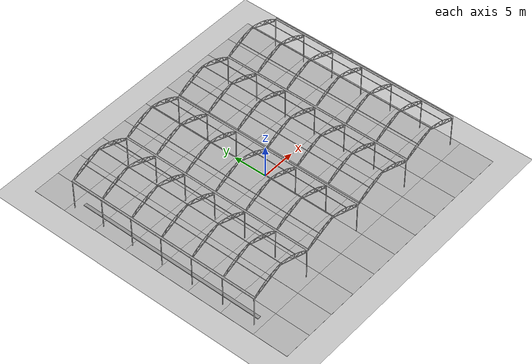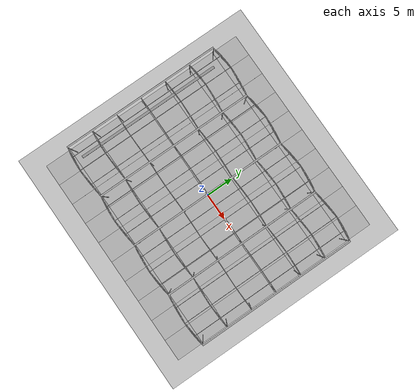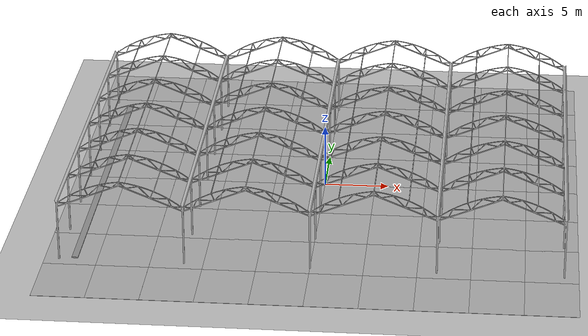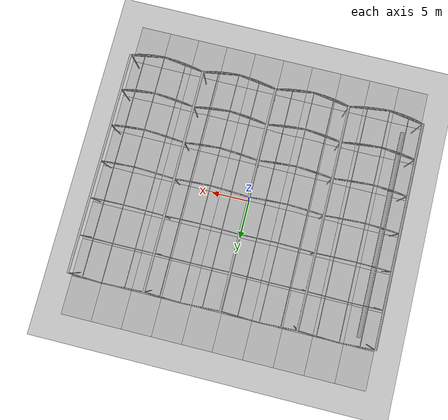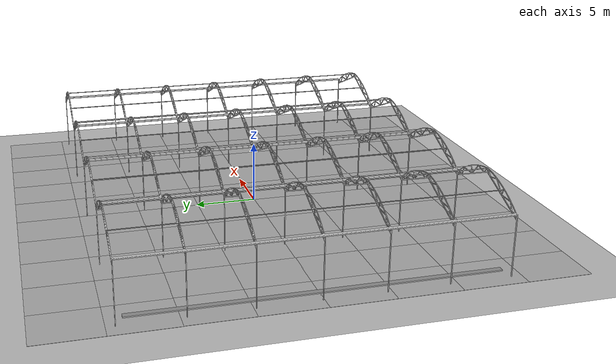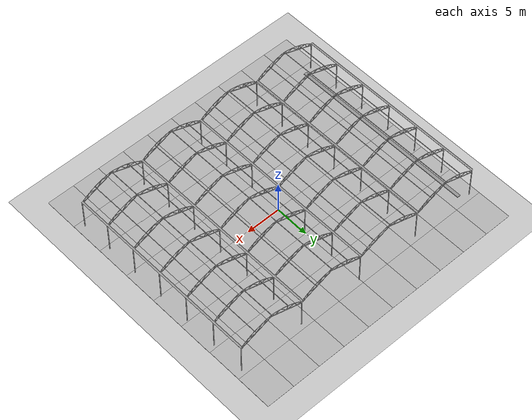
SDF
<sdf version="1.6">
 <world name="default">
  <light name="sun" type="directional">
   <pose>0 0 10 0 -0 0</pose>
   <diffuse>0.8 0.8 0.8 1</diffuse>
   <specular>0.2 0.2 0.2 1</specular>
   <attenuation>
    <range>1000</range>
    <constant>0.9</constant>
    <linear>0.01</linear>
    <quadratic>0.001</quadratic>
   </attenuation>
   <direction>-0.5 0.1 -0.9</direction>
  </light>
  <model name="ground_plane">
   <static>1</static>
   <link name="link">
    <collision name="collision">
     <geometry><plane><normal>0 0 1</normal><size>100 100</size></plane></geometry>
     <surface>
      <contact><collide_bitmask>65535</collide_bitmask></contact>
      <friction><ode><mu>100</mu><mu2>50</mu2></ode></friction>
     </surface>
    </collision>
    <visual name="visual">
     <cast_shadows>0</cast_shadows>
     <geometry><plane><normal>0 0 1</normal><size>100 100</size></plane></geometry>
     <material>
      <script><uri>file://media/materials/scripts/gazebo.material</uri><name>Gazebo/Grey</name></script>
     </material>
    </visual>
   </link>
  </model>
  <gravity>0 0 -9.8</gravity>
  <magnetic_field>6e-06 2.3e-05 -4.2e-05</magnetic_field>
  <atmosphere type="adiabatic"/>
  <physics name="default_physics" default="0" type="ode">
   <max_step_size>0.001</max_step_size>
   <real_time_factor>1</real_time_factor>
   <real_time_update_rate>1000</real_time_update_rate>
  </physics>
  <scene><ambient>0.4 0.4 0.4 1</ambient><background>0.7 0.7 0.7 1</background><shadows>1</shadows></scene>
  <audio><device>default</device></audio>
  <spherical_coordinates>
   <surface_model>EARTH_WGS84</surface_model>
   <latitude_deg>0</latitude_deg>
   <longitude_deg>0</longitude_deg>
   <elevation>0</elevation>
   <heading_deg>0</heading_deg>
  </spherical_coordinates>
  <model name="greenhouse">
   <static>1</static>
   <link name="link">
    <collision name="collision">
     <geometry>
      <mesh><scale>0.05 0.05 0.05</scale><uri>model://greenhouse/meshes/greenhouse.dae</uri></mesh>
     </geometry>
    </collision>
    <visual name="visual">
     <geometry>
      <mesh><scale>0.03 0.03 0.03</scale><uri>model://greenhouse/meshes/greenhouse.dae</uri></mesh>
     </geometry>
    </visual>
   </link>
   <pose>-24.6631 -23.579 0 0 -0 0</pose>
  </model>
  <model name="Plant_Base">
   <link name="link_0">
    <inertial>
     <mass>1.1839</mass>
     <inertia>
      <ixx>75.2086</ixx>
      <ixy>0</ixy>
      <ixz>0</ixz>
      <iyy>0.0226752</iyy>
      <iyz>0</iyz>
      <izz>75.2297</izz>
     </inertia>
    </inertial>
    <pose>1.3e-05 0 0 0 -0.006723 0</pose>
    <visual name="visual">
     <geometry><box><size>0.470639 27.6098 0.091294</size></box></geometry>
     <material>
      <lighting>1</lighting>
      <script><uri>file://media/materials/scripts/gazebo.material</uri><name>Gazebo/Grey</name></script>
     </material>
    </visual>
    <collision name="collision">
     <geometry><box><size>0.470639 27.6098 0.091294</size></box></geometry>
     <surface>
      <friction>
       <ode><mu>1</mu><mu2>1</mu2><fdir1>0 0 0</fdir1><slip1>0</slip1><slip2>0</slip2></ode>
       <torsional>
        <coefficient>1</coefficient>
        <patch_radius>0</patch_radius>
        <surface_radius>0</surface_radius>
        <use_patch_radius>1</use_patch_radius>
        <ode><slip>0</slip></ode>
       </torsional>
      </friction>
      <bounce><restitution_coefficient>0</restitution_coefficient><threshold>1e+06</threshold></bounce>
      <contact>
       <collide_without_contact>0</collide_without_contact>
       <collide_without_contact_bitmask>1</collide_without_contact_bitmask>
       <collide_bitmask>1</collide_bitmask>
       <ode>
        <soft_cfm>0</soft_cfm>
        <soft_erp>0.2</soft_erp>
        <kp>1e+13</kp>
        <kd>1</kd>
        <max_vel>0.01</max_vel>
        <min_depth>0</min_depth>
       </ode>
       <bullet>
        <split_impulse>1</split_impulse>
        <split_impulse_penetration_threshold>-0.01</split_impulse_penetration_threshold>
        <soft_cfm>0</soft_cfm>
        <soft_erp>0.2</soft_erp>
        <kp>1e+13</kp>
        <kd>1</kd>
       </bullet>
      </contact>
     </surface>
    </collision>
   </link>
   <static>0</static>
   <pose>-17.7368 -0.178911 0.055637 0 0.006766 0</pose>
  </model>
  <model name="Ground_Soil">
   <model name="mud_box">
    <static>1</static>
    <link name="link">
     <collision name="collision"><geometry><box><size>8 10 0.02</size></box></geometry></collision>
     <visual name="visual_1">
      <pose>-2 2.5 0 0 -0 0</pose>
      <cast_shadows>0</cast_shadows>
      <geometry><box><size>4 5 0.02</size></box></geometry>
      <material>
       <script>
        <uri>model://mud_box/materials/scripts</uri>
        <uri>model://mud_box/materials/textures</uri>
        <name>vrc/mud</name>
       </script>
      </material>
     </visual>
     <visual name="visual_2">
      <pose>2 2.5 0 0 -0 0</pose>
      <cast_shadows>0</cast_shadows>
      <geometry><box><size>4 5 0.02</size></box></geometry>
      <material>
       <script>
        <uri>model://mud_box/materials/scripts</uri>
        <uri>model://mud_box/materials/textures</uri>
        <name>vrc/mud</name>
       </script>
      </material>
     </visual>
     <visual name="visual_3">
      <pose>2 -2.5 0 0 -0 0</pose>
      <cast_shadows>0</cast_shadows>
      <geometry><box><size>4 5 0.02</size></box></geometry>
      <material>
       <script>
        <uri>model://mud_box/materials/scripts</uri>
        <uri>model://mud_box/materials/textures</uri>
        <name>vrc/mud</name>
       </script>
      </material>
     </visual>
     <visual name="visual_4">
      <pose>-2 -2.5 0 0 -0 0</pose>
      <cast_shadows>0</cast_shadows>
      <geometry><box><size>4 5 0.02</size></box></geometry>
      <material>
       <script>
        <uri>model://mud_box/materials/scripts</uri>
        <uri>model://mud_box/materials/textures</uri>
        <name>vrc/mud</name>
       </script>
      </material>
     </visual>
    </link>
    <pose>-16.0013 0.000118 0 0 -0 0</pose>
   </model>
   <model name="mud_box_0">
    <static>1</static>
    <link name="link">
     <collision name="collision"><geometry><box><size>8 10 0.02</size></box></geometry></collision>
     <visual name="visual_1">
      <pose>-2 2.5 0 0 -0 0</pose>
      <cast_shadows>0</cast_shadows>
      <geometry><box><size>4 5 0.02</size></box></geometry>
      <material>
       <script>
        <uri>model://mud_box/materials/scripts</uri>
        <uri>model://mud_box/materials/textures</uri>
        <name>vrc/mud</name>
       </script>
      </material>
     </visual>
     <visual name="visual_2">
      <pose>2 2.5 0 0 -0 0</pose>
      <cast_shadows>0</cast_shadows>
      <geometry><box><size>4 5 0.02</size></box></geometry>
      <material>
       <script>
        <uri>model://mud_box/materials/scripts</uri>
        <uri>model://mud_box/materials/textures</uri>
        <name>vrc/mud</name>
       </script>
      </material>
     </visual>
     <visual name="visual_3">
      <pose>2 -2.5 0 0 -0 0</pose>
      <cast_shadows>0</cast_shadows>
      <geometry><box><size>4 5 0.02</size></box></geometry>
      <material>
       <script>
        <uri>model://mud_box/materials/scripts</uri>
        <uri>model://mud_box/materials/textures</uri>
        <name>vrc/mud</name>
       </script>
      </material>
     </visual>
     <visual name="visual_4">
      <pose>-2 -2.5 0 0 -0 0</pose>
      <cast_shadows>0</cast_shadows>
      <geometry><box><size>4 5 0.02</size></box></geometry>
      <material>
       <script>
        <uri>model://mud_box/materials/scripts</uri>
        <uri>model://mud_box/materials/textures</uri>
        <name>vrc/mud</name>
       </script>
      </material>
     </visual>
    </link>
    <pose>-7.99939 9.1e-05 0 0 -0 0</pose>
   </model>
   <model name="mud_box_1">
    <static>1</static>
    <link name="link">
     <collision name="collision"><geometry><box><size>8 10 0.02</size></box></geometry></collision>
     <visual name="visual_1">
      <pose>-2 2.5 0 0 -0 0</pose>
      <cast_shadows>0</cast_shadows>
      <geometry><box><size>4 5 0.02</size></box></geometry>
      <material>
       <script>
        <uri>model://mud_box/materials/scripts</uri>
        <uri>model://mud_box/materials/textures</uri>
        <name>vrc/mud</name>
       </script>
      </material>
     </visual>
     <visual name="visual_2">
      <pose>2 2.5 0 0 -0 0</pose>
      <cast_shadows>0</cast_shadows>
      <geometry><box><size>4 5 0.02</size></box></geometry>
      <material>
       <script>
        <uri>model://mud_box/materials/scripts</uri>
        <uri>model://mud_box/materials/textures</uri>
        <name>vrc/mud</name>
       </script>
      </material>
     </visual>
     <visual name="visual_3">
      <pose>2 -2.5 0 0 -0 0</pose>
      <cast_shadows>0</cast_shadows>
      <geometry><box><size>4 5 0.02</size></box></geometry>
      <material>
       <script>
        <uri>model://mud_box/materials/scripts</uri>
        <uri>model://mud_box/materials/textures</uri>
        <name>vrc/mud</name>
       </script>
      </material>
     </visual>
     <visual name="visual_4">
      <pose>-2 -2.5 0 0 -0 0</pose>
      <cast_shadows>0</cast_shadows>
      <geometry><box><size>4 5 0.02</size></box></geometry>
      <material>
       <script>
        <uri>model://mud_box/materials/scripts</uri>
        <uri>model://mud_box/materials/textures</uri>
        <name>vrc/mud</name>
       </script>
      </material>
     </visual>
    </link>
    <pose>0.000809 -0.000342 0 0 -0 0</pose>
   </model>
   <model name="mud_box_2">
    <static>1</static>
    <link name="link">
     <collision name="collision"><geometry><box><size>8 10 0.02</size></box></geometry></collision>
     <visual name="visual_1">
      <pose>-2 2.5 0 0 -0 0</pose>
      <cast_shadows>0</cast_shadows>
      <geometry><box><size>4 5 0.02</size></box></geometry>
      <material>
       <script>
        <uri>model://mud_box/materials/scripts</uri>
        <uri>model://mud_box/materials/textures</uri>
        <name>vrc/mud</name>
       </script>
      </material>
     </visual>
     <visual name="visual_2">
      <pose>2 2.5 0 0 -0 0</pose>
      <cast_shadows>0</cast_shadows>
      <geometry><box><size>4 5 0.02</size></box></geometry>
      <material>
       <script>
        <uri>model://mud_box/materials/scripts</uri>
        <uri>model://mud_box/materials/textures</uri>
        <name>vrc/mud</name>
       </script>
      </material>
     </visual>
     <visual name="visual_3">
      <pose>2 -2.5 0 0 -0 0</pose>
      <cast_shadows>0</cast_shadows>
      <geometry><box><size>4 5 0.02</size></box></geometry>
      <material>
       <script>
        <uri>model://mud_box/materials/scripts</uri>
        <uri>model://mud_box/materials/textures</uri>
        <name>vrc/mud</name>
       </script>
      </material>
     </visual>
     <visual name="visual_4">
      <pose>-2 -2.5 0 0 -0 0</pose>
      <cast_shadows>0</cast_shadows>
      <geometry><box><size>4 5 0.02</size></box></geometry>
      <material>
       <script>
        <uri>model://mud_box/materials/scripts</uri>
        <uri>model://mud_box/materials/textures</uri>
        <name>vrc/mud</name>
       </script>
      </material>
     </visual>
    </link>
    <pose>8.00089 -0.000148 0 0 -0 0</pose>
   </model>
   <model name="mud_box_3">
    <static>1</static>
    <link name="link">
     <collision name="collision"><geometry><box><size>8 10 0.02</size></box></geometry></collision>
     <visual name="visual_1">
      <pose>-2 2.5 0 0 -0 0</pose>
      <cast_shadows>0</cast_shadows>
      <geometry><box><size>4 5 0.02</size></box></geometry>
      <material>
       <script>
        <uri>model://mud_box/materials/scripts</uri>
        <uri>model://mud_box/materials/textures</uri>
        <name>vrc/mud</name>
       </script>
      </material>
     </visual>
     <visual name="visual_2">
      <pose>2 2.5 0 0 -0 0</pose>
      <cast_shadows>0</cast_shadows>
      <geometry><box><size>4 5 0.02</size></box></geometry>
      <material>
       <script>
        <uri>model://mud_box/materials/scripts</uri>
        <uri>model://mud_box/materials/textures</uri>
        <name>vrc/mud</name>
       </script>
      </material>
     </visual>
     <visual name="visual_3">
      <pose>2 -2.5 0 0 -0 0</pose>
      <cast_shadows>0</cast_shadows>
      <geometry><box><size>4 5 0.02</size></box></geometry>
      <material>
       <script>
        <uri>model://mud_box/materials/scripts</uri>
        <uri>model://mud_box/materials/textures</uri>
        <name>vrc/mud</name>
       </script>
      </material>
     </visual>
     <visual name="visual_4">
      <pose>-2 -2.5 0 0 -0 0</pose>
      <cast_shadows>0</cast_shadows>
      <geometry><box><size>4 5 0.02</size></box></geometry>
      <material>
       <script>
        <uri>model://mud_box/materials/scripts</uri>
        <uri>model://mud_box/materials/textures</uri>
        <name>vrc/mud</name>
       </script>
      </material>
     </visual>
    </link>
    <pose>15.9991 0.000313 0 0 -0 0</pose>
   </model>
   <static>0</static>
   <pose>-0.005885 -14.9895 0 0 -0 0</pose>
  </model>
  <model name="Ground_Soil_0">
   <model name="mud_box">
    <static>1</static>
    <link name="link">
     <collision name="collision"><geometry><box><size>8 10 0.02</size></box></geometry></collision>
     <visual name="visual_1">
      <pose>-2 2.5 0 0 -0 0</pose>
      <cast_shadows>0</cast_shadows>
      <geometry><box><size>4 5 0.02</size></box></geometry>
      <material>
       <script>
        <uri>model://mud_box/materials/scripts</uri>
        <uri>model://mud_box/materials/textures</uri>
        <name>vrc/mud</name>
       </script>
      </material>
     </visual>
     <visual name="visual_2">
      <pose>2 2.5 0 0 -0 0</pose>
      <cast_shadows>0</cast_shadows>
      <geometry><box><size>4 5 0.02</size></box></geometry>
      <material>
       <script>
        <uri>model://mud_box/materials/scripts</uri>
        <uri>model://mud_box/materials/textures</uri>
        <name>vrc/mud</name>
       </script>
      </material>
     </visual>
     <visual name="visual_3">
      <pose>2 -2.5 0 0 -0 0</pose>
      <cast_shadows>0</cast_shadows>
      <geometry><box><size>4 5 0.02</size></box></geometry>
      <material>
       <script>
        <uri>model://mud_box/materials/scripts</uri>
        <uri>model://mud_box/materials/textures</uri>
        <name>vrc/mud</name>
       </script>
      </material>
     </visual>
     <visual name="visual_4">
      <pose>-2 -2.5 0 0 -0 0</pose>
      <cast_shadows>0</cast_shadows>
      <geometry><box><size>4 5 0.02</size></box></geometry>
      <material>
       <script>
        <uri>model://mud_box/materials/scripts</uri>
        <uri>model://mud_box/materials/textures</uri>
        <name>vrc/mud</name>
       </script>
      </material>
     </visual>
    </link>
    <pose>-16.0013 0.000118 0 0 -0 0</pose>
   </model>
   <model name="mud_box_0">
    <static>1</static>
    <link name="link">
     <collision name="collision"><geometry><box><size>8 10 0.02</size></box></geometry></collision>
     <visual name="visual_1">
      <pose>-2 2.5 0 0 -0 0</pose>
      <cast_shadows>0</cast_shadows>
      <geometry><box><size>4 5 0.02</size></box></geometry>
      <material>
       <script>
        <uri>model://mud_box/materials/scripts</uri>
        <uri>model://mud_box/materials/textures</uri>
        <name>vrc/mud</name>
       </script>
      </material>
     </visual>
     <visual name="visual_2">
      <pose>2 2.5 0 0 -0 0</pose>
      <cast_shadows>0</cast_shadows>
      <geometry><box><size>4 5 0.02</size></box></geometry>
      <material>
       <script>
        <uri>model://mud_box/materials/scripts</uri>
        <uri>model://mud_box/materials/textures</uri>
        <name>vrc/mud</name>
       </script>
      </material>
     </visual>
     <visual name="visual_3">
      <pose>2 -2.5 0 0 -0 0</pose>
      <cast_shadows>0</cast_shadows>
      <geometry><box><size>4 5 0.02</size></box></geometry>
      <material>
       <script>
        <uri>model://mud_box/materials/scripts</uri>
        <uri>model://mud_box/materials/textures</uri>
        <name>vrc/mud</name>
       </script>
      </material>
     </visual>
     <visual name="visual_4">
      <pose>-2 -2.5 0 0 -0 0</pose>
      <cast_shadows>0</cast_shadows>
      <geometry><box><size>4 5 0.02</size></box></geometry>
      <material>
       <script>
        <uri>model://mud_box/materials/scripts</uri>
        <uri>model://mud_box/materials/textures</uri>
        <name>vrc/mud</name>
       </script>
      </material>
     </visual>
    </link>
    <pose>-7.99939 9.1e-05 0 0 -0 0</pose>
   </model>
   <model name="mud_box_1">
    <static>1</static>
    <link name="link">
     <collision name="collision"><geometry><box><size>8 10 0.02</size></box></geometry></collision>
     <visual name="visual_1">
      <pose>-2 2.5 0 0 -0 0</pose>
      <cast_shadows>0</cast_shadows>
      <geometry><box><size>4 5 0.02</size></box></geometry>
      <material>
       <script>
        <uri>model://mud_box/materials/scripts</uri>
        <uri>model://mud_box/materials/textures</uri>
        <name>vrc/mud</name>
       </script>
      </material>
     </visual>
     <visual name="visual_2">
      <pose>2 2.5 0 0 -0 0</pose>
      <cast_shadows>0</cast_shadows>
      <geometry><box><size>4 5 0.02</size></box></geometry>
      <material>
       <script>
        <uri>model://mud_box/materials/scripts</uri>
        <uri>model://mud_box/materials/textures</uri>
        <name>vrc/mud</name>
       </script>
      </material>
     </visual>
     <visual name="visual_3">
      <pose>2 -2.5 0 0 -0 0</pose>
      <cast_shadows>0</cast_shadows>
      <geometry><box><size>4 5 0.02</size></box></geometry>
      <material>
       <script>
        <uri>model://mud_box/materials/scripts</uri>
        <uri>model://mud_box/materials/textures</uri>
        <name>vrc/mud</name>
       </script>
      </material>
     </visual>
     <visual name="visual_4">
      <pose>-2 -2.5 0 0 -0 0</pose>
      <cast_shadows>0</cast_shadows>
      <geometry><box><size>4 5 0.02</size></box></geometry>
      <material>
       <script>
        <uri>model://mud_box/materials/scripts</uri>
        <uri>model://mud_box/materials/textures</uri>
        <name>vrc/mud</name>
       </script>
      </material>
     </visual>
    </link>
    <pose>0.000809 -0.000342 0 0 -0 0</pose>
   </model>
   <model name="mud_box_2">
    <static>1</static>
    <link name="link">
     <collision name="collision"><geometry><box><size>8 10 0.02</size></box></geometry></collision>
     <visual name="visual_1">
      <pose>-2 2.5 0 0 -0 0</pose>
      <cast_shadows>0</cast_shadows>
      <geometry><box><size>4 5 0.02</size></box></geometry>
      <material>
       <script>
        <uri>model://mud_box/materials/scripts</uri>
        <uri>model://mud_box/materials/textures</uri>
        <name>vrc/mud</name>
       </script>
      </material>
     </visual>
     <visual name="visual_2">
      <pose>2 2.5 0 0 -0 0</pose>
      <cast_shadows>0</cast_shadows>
      <geometry><box><size>4 5 0.02</size></box></geometry>
      <material>
       <script>
        <uri>model://mud_box/materials/scripts</uri>
        <uri>model://mud_box/materials/textures</uri>
        <name>vrc/mud</name>
       </script>
      </material>
     </visual>
     <visual name="visual_3">
      <pose>2 -2.5 0 0 -0 0</pose>
      <cast_shadows>0</cast_shadows>
      <geometry><box><size>4 5 0.02</size></box></geometry>
      <material>
       <script>
        <uri>model://mud_box/materials/scripts</uri>
        <uri>model://mud_box/materials/textures</uri>
        <name>vrc/mud</name>
       </script>
      </material>
     </visual>
     <visual name="visual_4">
      <pose>-2 -2.5 0 0 -0 0</pose>
      <cast_shadows>0</cast_shadows>
      <geometry><box><size>4 5 0.02</size></box></geometry>
      <material>
       <script>
        <uri>model://mud_box/materials/scripts</uri>
        <uri>model://mud_box/materials/textures</uri>
        <name>vrc/mud</name>
       </script>
      </material>
     </visual>
    </link>
    <pose>8.00089 -0.000148 0 0 -0 0</pose>
   </model>
   <model name="mud_box_3">
    <static>1</static>
    <link name="link">
     <collision name="collision"><geometry><box><size>8 10 0.02</size></box></geometry></collision>
     <visual name="visual_1">
      <pose>-2 2.5 0 0 -0 0</pose>
      <cast_shadows>0</cast_shadows>
      <geometry><box><size>4 5 0.02</size></box></geometry>
      <material>
       <script>
        <uri>model://mud_box/materials/scripts</uri>
        <uri>model://mud_box/materials/textures</uri>
        <name>vrc/mud</name>
       </script>
      </material>
     </visual>
     <visual name="visual_2">
      <pose>2 2.5 0 0 -0 0</pose>
      <cast_shadows>0</cast_shadows>
      <geometry><box><size>4 5 0.02</size></box></geometry>
      <material>
       <script>
        <uri>model://mud_box/materials/scripts</uri>
        <uri>model://mud_box/materials/textures</uri>
        <name>vrc/mud</name>
       </script>
      </material>
     </visual>
     <visual name="visual_3">
      <pose>2 -2.5 0 0 -0 0</pose>
      <cast_shadows>0</cast_shadows>
      <geometry><box><size>4 5 0.02</size></box></geometry>
      <material>
       <script>
        <uri>model://mud_box/materials/scripts</uri>
        <uri>model://mud_box/materials/textures</uri>
        <name>vrc/mud</name>
       </script>
      </material>
     </visual>
     <visual name="visual_4">
      <pose>-2 -2.5 0 0 -0 0</pose>
      <cast_shadows>0</cast_shadows>
      <geometry><box><size>4 5 0.02</size></box></geometry>
      <material>
       <script>
        <uri>model://mud_box/materials/scripts</uri>
        <uri>model://mud_box/materials/textures</uri>
        <name>vrc/mud</name>
       </script>
      </material>
     </visual>
    </link>
    <pose>15.9991 0.000313 0 0 -0 0</pose>
   </model>
   <static>0</static>
   <pose>-0.012636 -5.05002 0 0 -0 0</pose>
  </model>
  <model name="Ground_Soil_1">
   <model name="mud_box">
    <static>1</static>
    <link name="link">
     <collision name="collision"><geometry><box><size>8 10 0.02</size></box></geometry></collision>
     <visual name="visual_1">
      <pose>-2 2.5 0 0 -0 0</pose>
      <cast_shadows>0</cast_shadows>
      <geometry><box><size>4 5 0.02</size></box></geometry>
      <material>
       <script>
        <uri>model://mud_box/materials/scripts</uri>
        <uri>model://mud_box/materials/textures</uri>
        <name>vrc/mud</name>
       </script>
      </material>
     </visual>
     <visual name="visual_2">
      <pose>2 2.5 0 0 -0 0</pose>
      <cast_shadows>0</cast_shadows>
      <geometry><box><size>4 5 0.02</size></box></geometry>
      <material>
       <script>
        <uri>model://mud_box/materials/scripts</uri>
        <uri>model://mud_box/materials/textures</uri>
        <name>vrc/mud</name>
       </script>
      </material>
     </visual>
     <visual name="visual_3">
      <pose>2 -2.5 0 0 -0 0</pose>
      <cast_shadows>0</cast_shadows>
      <geometry><box><size>4 5 0.02</size></box></geometry>
      <material>
       <script>
        <uri>model://mud_box/materials/scripts</uri>
        <uri>model://mud_box/materials/textures</uri>
        <name>vrc/mud</name>
       </script>
      </material>
     </visual>
     <visual name="visual_4">
      <pose>-2 -2.5 0 0 -0 0</pose>
      <cast_shadows>0</cast_shadows>
      <geometry><box><size>4 5 0.02</size></box></geometry>
      <material>
       <script>
        <uri>model://mud_box/materials/scripts</uri>
        <uri>model://mud_box/materials/textures</uri>
        <name>vrc/mud</name>
       </script>
      </material>
     </visual>
    </link>
    <pose>-16.0013 0.000118 0 0 -0 0</pose>
   </model>
   <model name="mud_box_0">
    <static>1</static>
    <link name="link">
     <collision name="collision"><geometry><box><size>8 10 0.02</size></box></geometry></collision>
     <visual name="visual_1">
      <pose>-2 2.5 0 0 -0 0</pose>
      <cast_shadows>0</cast_shadows>
      <geometry><box><size>4 5 0.02</size></box></geometry>
      <material>
       <script>
        <uri>model://mud_box/materials/scripts</uri>
        <uri>model://mud_box/materials/textures</uri>
        <name>vrc/mud</name>
       </script>
      </material>
     </visual>
     <visual name="visual_2">
      <pose>2 2.5 0 0 -0 0</pose>
      <cast_shadows>0</cast_shadows>
      <geometry><box><size>4 5 0.02</size></box></geometry>
      <material>
       <script>
        <uri>model://mud_box/materials/scripts</uri>
        <uri>model://mud_box/materials/textures</uri>
        <name>vrc/mud</name>
       </script>
      </material>
     </visual>
     <visual name="visual_3">
      <pose>2 -2.5 0 0 -0 0</pose>
      <cast_shadows>0</cast_shadows>
      <geometry><box><size>4 5 0.02</size></box></geometry>
      <material>
       <script>
        <uri>model://mud_box/materials/scripts</uri>
        <uri>model://mud_box/materials/textures</uri>
        <name>vrc/mud</name>
       </script>
      </material>
     </visual>
     <visual name="visual_4">
      <pose>-2 -2.5 0 0 -0 0</pose>
      <cast_shadows>0</cast_shadows>
      <geometry><box><size>4 5 0.02</size></box></geometry>
      <material>
       <script>
        <uri>model://mud_box/materials/scripts</uri>
        <uri>model://mud_box/materials/textures</uri>
        <name>vrc/mud</name>
       </script>
      </material>
     </visual>
    </link>
    <pose>-7.99939 9.1e-05 0 0 -0 0</pose>
   </model>
   <model name="mud_box_1">
    <static>1</static>
    <link name="link">
     <collision name="collision"><geometry><box><size>8 10 0.02</size></box></geometry></collision>
     <visual name="visual_1">
      <pose>-2 2.5 0 0 -0 0</pose>
      <cast_shadows>0</cast_shadows>
      <geometry><box><size>4 5 0.02</size></box></geometry>
      <material>
       <script>
        <uri>model://mud_box/materials/scripts</uri>
        <uri>model://mud_box/materials/textures</uri>
        <name>vrc/mud</name>
       </script>
      </material>
     </visual>
     <visual name="visual_2">
      <pose>2 2.5 0 0 -0 0</pose>
      <cast_shadows>0</cast_shadows>
      <geometry><box><size>4 5 0.02</size></box></geometry>
      <material>
       <script>
        <uri>model://mud_box/materials/scripts</uri>
        <uri>model://mud_box/materials/textures</uri>
        <name>vrc/mud</name>
       </script>
      </material>
     </visual>
     <visual name="visual_3">
      <pose>2 -2.5 0 0 -0 0</pose>
      <cast_shadows>0</cast_shadows>
      <geometry><box><size>4 5 0.02</size></box></geometry>
      <material>
       <script>
        <uri>model://mud_box/materials/scripts</uri>
        <uri>model://mud_box/materials/textures</uri>
        <name>vrc/mud</name>
       </script>
      </material>
     </visual>
     <visual name="visual_4">
      <pose>-2 -2.5 0 0 -0 0</pose>
      <cast_shadows>0</cast_shadows>
      <geometry><box><size>4 5 0.02</size></box></geometry>
      <material>
       <script>
        <uri>model://mud_box/materials/scripts</uri>
        <uri>model://mud_box/materials/textures</uri>
        <name>vrc/mud</name>
       </script>
      </material>
     </visual>
    </link>
    <pose>0.000809 -0.000342 0 0 -0 0</pose>
   </model>
   <model name="mud_box_2">
    <static>1</static>
    <link name="link">
     <collision name="collision"><geometry><box><size>8 10 0.02</size></box></geometry></collision>
     <visual name="visual_1">
      <pose>-2 2.5 0 0 -0 0</pose>
      <cast_shadows>0</cast_shadows>
      <geometry><box><size>4 5 0.02</size></box></geometry>
      <material>
       <script>
        <uri>model://mud_box/materials/scripts</uri>
        <uri>model://mud_box/materials/textures</uri>
        <name>vrc/mud</name>
       </script>
      </material>
     </visual>
     <visual name="visual_2">
      <pose>2 2.5 0 0 -0 0</pose>
      <cast_shadows>0</cast_shadows>
      <geometry><box><size>4 5 0.02</size></box></geometry>
      <material>
       <script>
        <uri>model://mud_box/materials/scripts</uri>
        <uri>model://mud_box/materials/textures</uri>
        <name>vrc/mud</name>
       </script>
      </material>
     </visual>
     <visual name="visual_3">
      <pose>2 -2.5 0 0 -0 0</pose>
      <cast_shadows>0</cast_shadows>
      <geometry><box><size>4 5 0.02</size></box></geometry>
      <material>
       <script>
        <uri>model://mud_box/materials/scripts</uri>
        <uri>model://mud_box/materials/textures</uri>
        <name>vrc/mud</name>
       </script>
      </material>
     </visual>
     <visual name="visual_4">
      <pose>-2 -2.5 0 0 -0 0</pose>
      <cast_shadows>0</cast_shadows>
      <geometry><box><size>4 5 0.02</size></box></geometry>
      <material>
       <script>
        <uri>model://mud_box/materials/scripts</uri>
        <uri>model://mud_box/materials/textures</uri>
        <name>vrc/mud</name>
       </script>
      </material>
     </visual>
    </link>
    <pose>8.00089 -0.000148 0 0 -0 0</pose>
   </model>
   <model name="mud_box_3">
    <static>1</static>
    <link name="link">
     <collision name="collision"><geometry><box><size>8 10 0.02</size></box></geometry></collision>
     <visual name="visual_1">
      <pose>-2 2.5 0 0 -0 0</pose>
      <cast_shadows>0</cast_shadows>
      <geometry><box><size>4 5 0.02</size></box></geometry>
      <material>
       <script>
        <uri>model://mud_box/materials/scripts</uri>
        <uri>model://mud_box/materials/textures</uri>
        <name>vrc/mud</name>
       </script>
      </material>
     </visual>
     <visual name="visual_2">
      <pose>2 2.5 0 0 -0 0</pose>
      <cast_shadows>0</cast_shadows>
      <geometry><box><size>4 5 0.02</size></box></geometry>
      <material>
       <script>
        <uri>model://mud_box/materials/scripts</uri>
        <uri>model://mud_box/materials/textures</uri>
        <name>vrc/mud</name>
       </script>
      </material>
     </visual>
     <visual name="visual_3">
      <pose>2 -2.5 0 0 -0 0</pose>
      <cast_shadows>0</cast_shadows>
      <geometry><box><size>4 5 0.02</size></box></geometry>
      <material>
       <script>
        <uri>model://mud_box/materials/scripts</uri>
        <uri>model://mud_box/materials/textures</uri>
        <name>vrc/mud</name>
       </script>
      </material>
     </visual>
     <visual name="visual_4">
      <pose>-2 -2.5 0 0 -0 0</pose>
      <cast_shadows>0</cast_shadows>
      <geometry><box><size>4 5 0.02</size></box></geometry>
      <material>
       <script>
        <uri>model://mud_box/materials/scripts</uri>
        <uri>model://mud_box/materials/textures</uri>
        <name>vrc/mud</name>
       </script>
      </material>
     </visual>
    </link>
    <pose>15.9991 0.000313 0 0 -0 0</pose>
   </model>
   <static>0</static>
   <pose>-0.012586 4.89814 0 0 -0 0</pose>
  </model>
  <model name="Ground_Soil_2">
   <model name="mud_box">
    <static>1</static>
    <link name="link">
     <collision name="collision"><geometry><box><size>8 10 0.02</size></box></geometry></collision>
     <visual name="visual_1">
      <pose>-2 2.5 0 0 -0 0</pose>
      <cast_shadows>0</cast_shadows>
      <geometry><box><size>4 5 0.02</size></box></geometry>
      <material>
       <script>
        <uri>model://mud_box/materials/scripts</uri>
        <uri>model://mud_box/materials/textures</uri>
        <name>vrc/mud</name>
       </script>
      </material>
     </visual>
     <visual name="visual_2">
      <pose>2 2.5 0 0 -0 0</pose>
      <cast_shadows>0</cast_shadows>
      <geometry><box><size>4 5 0.02</size></box></geometry>
      <material>
       <script>
        <uri>model://mud_box/materials/scripts</uri>
        <uri>model://mud_box/materials/textures</uri>
        <name>vrc/mud</name>
       </script>
      </material>
     </visual>
     <visual name="visual_3">
      <pose>2 -2.5 0 0 -0 0</pose>
      <cast_shadows>0</cast_shadows>
      <geometry><box><size>4 5 0.02</size></box></geometry>
      <material>
       <script>
        <uri>model://mud_box/materials/scripts</uri>
        <uri>model://mud_box/materials/textures</uri>
        <name>vrc/mud</name>
       </script>
      </material>
     </visual>
     <visual name="visual_4">
      <pose>-2 -2.5 0 0 -0 0</pose>
      <cast_shadows>0</cast_shadows>
      <geometry><box><size>4 5 0.02</size></box></geometry>
      <material>
       <script>
        <uri>model://mud_box/materials/scripts</uri>
        <uri>model://mud_box/materials/textures</uri>
        <name>vrc/mud</name>
       </script>
      </material>
     </visual>
    </link>
    <pose>-16.0013 0.000118 0 0 -0 0</pose>
   </model>
   <model name="mud_box_0">
    <static>1</static>
    <link name="link">
     <collision name="collision"><geometry><box><size>8 10 0.02</size></box></geometry></collision>
     <visual name="visual_1">
      <pose>-2 2.5 0 0 -0 0</pose>
      <cast_shadows>0</cast_shadows>
      <geometry><box><size>4 5 0.02</size></box></geometry>
      <material>
       <script>
        <uri>model://mud_box/materials/scripts</uri>
        <uri>model://mud_box/materials/textures</uri>
        <name>vrc/mud</name>
       </script>
      </material>
     </visual>
     <visual name="visual_2">
      <pose>2 2.5 0 0 -0 0</pose>
      <cast_shadows>0</cast_shadows>
      <geometry><box><size>4 5 0.02</size></box></geometry>
      <material>
       <script>
        <uri>model://mud_box/materials/scripts</uri>
        <uri>model://mud_box/materials/textures</uri>
        <name>vrc/mud</name>
       </script>
      </material>
     </visual>
     <visual name="visual_3">
      <pose>2 -2.5 0 0 -0 0</pose>
      <cast_shadows>0</cast_shadows>
      <geometry><box><size>4 5 0.02</size></box></geometry>
      <material>
       <script>
        <uri>model://mud_box/materials/scripts</uri>
        <uri>model://mud_box/materials/textures</uri>
        <name>vrc/mud</name>
       </script>
      </material>
     </visual>
     <visual name="visual_4">
      <pose>-2 -2.5 0 0 -0 0</pose>
      <cast_shadows>0</cast_shadows>
      <geometry><box><size>4 5 0.02</size></box></geometry>
      <material>
       <script>
        <uri>model://mud_box/materials/scripts</uri>
        <uri>model://mud_box/materials/textures</uri>
        <name>vrc/mud</name>
       </script>
      </material>
     </visual>
    </link>
    <pose>-7.99939 9.1e-05 0 0 -0 0</pose>
   </model>
   <model name="mud_box_1">
    <static>1</static>
    <link name="link">
     <collision name="collision"><geometry><box><size>8 10 0.02</size></box></geometry></collision>
     <visual name="visual_1">
      <pose>-2 2.5 0 0 -0 0</pose>
      <cast_shadows>0</cast_shadows>
      <geometry><box><size>4 5 0.02</size></box></geometry>
      <material>
       <script>
        <uri>model://mud_box/materials/scripts</uri>
        <uri>model://mud_box/materials/textures</uri>
        <name>vrc/mud</name>
       </script>
      </material>
     </visual>
     <visual name="visual_2">
      <pose>2 2.5 0 0 -0 0</pose>
      <cast_shadows>0</cast_shadows>
      <geometry><box><size>4 5 0.02</size></box></geometry>
      <material>
       <script>
        <uri>model://mud_box/materials/scripts</uri>
        <uri>model://mud_box/materials/textures</uri>
        <name>vrc/mud</name>
       </script>
      </material>
     </visual>
     <visual name="visual_3">
      <pose>2 -2.5 0 0 -0 0</pose>
      <cast_shadows>0</cast_shadows>
      <geometry><box><size>4 5 0.02</size></box></geometry>
      <material>
       <script>
        <uri>model://mud_box/materials/scripts</uri>
        <uri>model://mud_box/materials/textures</uri>
        <name>vrc/mud</name>
       </script>
      </material>
     </visual>
     <visual name="visual_4">
      <pose>-2 -2.5 0 0 -0 0</pose>
      <cast_shadows>0</cast_shadows>
      <geometry><box><size>4 5 0.02</size></box></geometry>
      <material>
       <script>
        <uri>model://mud_box/materials/scripts</uri>
        <uri>model://mud_box/materials/textures</uri>
        <name>vrc/mud</name>
       </script>
      </material>
     </visual>
    </link>
    <pose>0.000809 -0.000342 0 0 -0 0</pose>
   </model>
   <model name="mud_box_2">
    <static>1</static>
    <link name="link">
     <collision name="collision"><geometry><box><size>8 10 0.02</size></box></geometry></collision>
     <visual name="visual_1">
      <pose>-2 2.5 0 0 -0 0</pose>
      <cast_shadows>0</cast_shadows>
      <geometry><box><size>4 5 0.02</size></box></geometry>
      <material>
       <script>
        <uri>model://mud_box/materials/scripts</uri>
        <uri>model://mud_box/materials/textures</uri>
        <name>vrc/mud</name>
       </script>
      </material>
     </visual>
     <visual name="visual_2">
      <pose>2 2.5 0 0 -0 0</pose>
      <cast_shadows>0</cast_shadows>
      <geometry><box><size>4 5 0.02</size></box></geometry>
      <material>
       <script>
        <uri>model://mud_box/materials/scripts</uri>
        <uri>model://mud_box/materials/textures</uri>
        <name>vrc/mud</name>
       </script>
      </material>
     </visual>
     <visual name="visual_3">
      <pose>2 -2.5 0 0 -0 0</pose>
      <cast_shadows>0</cast_shadows>
      <geometry><box><size>4 5 0.02</size></box></geometry>
      <material>
       <script>
        <uri>model://mud_box/materials/scripts</uri>
        <uri>model://mud_box/materials/textures</uri>
        <name>vrc/mud</name>
       </script>
      </material>
     </visual>
     <visual name="visual_4">
      <pose>-2 -2.5 0 0 -0 0</pose>
      <cast_shadows>0</cast_shadows>
      <geometry><box><size>4 5 0.02</size></box></geometry>
      <material>
       <script>
        <uri>model://mud_box/materials/scripts</uri>
        <uri>model://mud_box/materials/textures</uri>
        <name>vrc/mud</name>
       </script>
      </material>
     </visual>
    </link>
    <pose>8.00089 -0.000148 0 0 -0 0</pose>
   </model>
   <model name="mud_box_3">
    <static>1</static>
    <link name="link">
     <collision name="collision"><geometry><box><size>8 10 0.02</size></box></geometry></collision>
     <visual name="visual_1">
      <pose>-2 2.5 0 0 -0 0</pose>
      <cast_shadows>0</cast_shadows>
      <geometry><box><size>4 5 0.02</size></box></geometry>
      <material>
       <script>
        <uri>model://mud_box/materials/scripts</uri>
        <uri>model://mud_box/materials/textures</uri>
        <name>vrc/mud</name>
       </script>
      </material>
     </visual>
     <visual name="visual_2">
      <pose>2 2.5 0 0 -0 0</pose>
      <cast_shadows>0</cast_shadows>
      <geometry><box><size>4 5 0.02</size></box></geometry>
      <material>
       <script>
        <uri>model://mud_box/materials/scripts</uri>
        <uri>model://mud_box/materials/textures</uri>
        <name>vrc/mud</name>
       </script>
      </material>
     </visual>
     <visual name="visual_3">
      <pose>2 -2.5 0 0 -0 0</pose>
      <cast_shadows>0</cast_shadows>
      <geometry><box><size>4 5 0.02</size></box></geometry>
      <material>
       <script>
        <uri>model://mud_box/materials/scripts</uri>
        <uri>model://mud_box/materials/textures</uri>
        <name>vrc/mud</name>
       </script>
      </material>
     </visual>
     <visual name="visual_4">
      <pose>-2 -2.5 0 0 -0 0</pose>
      <cast_shadows>0</cast_shadows>
      <geometry><box><size>4 5 0.02</size></box></geometry>
      <material>
       <script>
        <uri>model://mud_box/materials/scripts</uri>
        <uri>model://mud_box/materials/textures</uri>
        <name>vrc/mud</name>
       </script>
      </material>
     </visual>
    </link>
    <pose>15.9991 0.000313 0 0 -0 0</pose>
   </model>
   <static>0</static>
   <pose>-0.04622 14.8693 0 0 -0 0</pose>
  </model>
 </world>
</sdf>
